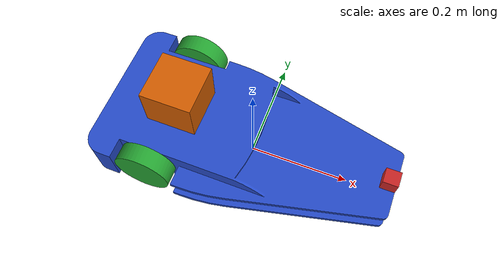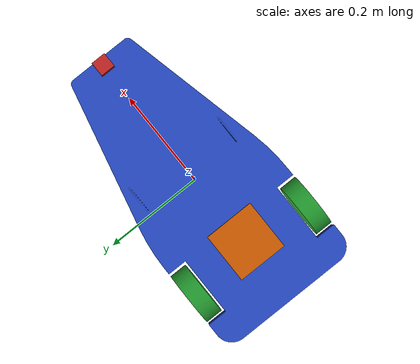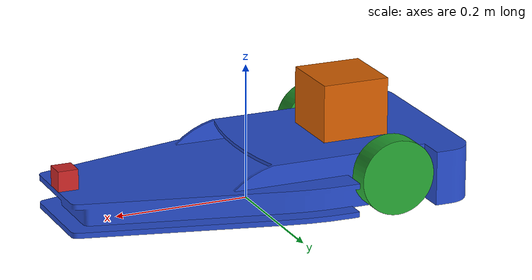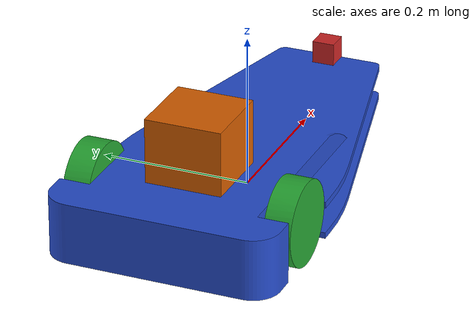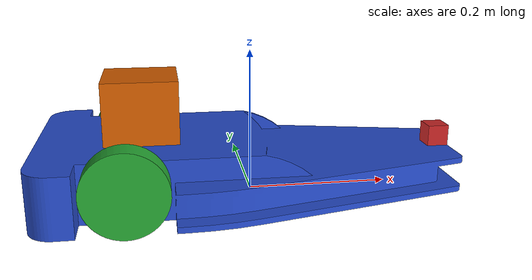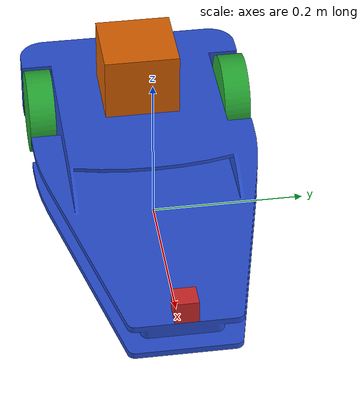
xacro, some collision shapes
<?xml version='1.0'?>

<robot name="my_robot" xmlns:xacro="http://www.ros.org/wiki/xacro">

  <xacro:include filename="$(find my_robot)/urdf/my_robot_improved.gazebo" />

  <link name="robot_footprint"></link>

  <joint name="robot_footprint_joint" type="fixed">
    <origin xyz="0 0 0" rpy="0 0 0" />
    <parent link="robot_footprint"/>
    <child link="chassis" />
  </joint>

  <link name='chassis'>
    <pose>0 0 0 0 0 0</pose>

    <inertial>
      <mass value="15.0"/>
      <origin xyz="0.0 0 0" rpy=" 0 0 0"/>
      <inertia
          ixx="0.1" ixy="0" ixz="0"
          iyy="0.1" iyz="0"
          izz="0.1"
      />
    </inertial>

    <collision name='collision'>
      <origin xyz="0 0 0" rpy=" 0 0 0"/>
      <geometry>
        <box size=".58 .3 .08"/>
      </geometry>
    </collision>

    <visual name='chassis_visual'>
      <origin xyz="0 0 0" rpy="0 0 0"/>
      <geometry>
        <mesh filename="package://my_robot/meshes/chassis.dae" scale="1 1 1"/>
      </geometry>
    </visual>

    <collision name='back_caster_collision'>
      <origin xyz="-0.25 0 0.01" rpy=" 0 0 0"/>
      <geometry>
        <sphere radius="0.0099"/>
      </geometry>
    </collision>

    <visual name='back_caster_visual'>
      <origin xyz="-0.25 0 0.01" rpy=" 0 0 0"/>
      <geometry>
        <sphere radius="0.01"/>
      </geometry>
    </visual>

    <collision name='front_caster_collision'>
      <origin xyz="0.25 0 0.01" rpy=" 0 0 0"/>
      <geometry>
        <sphere radius="0.0099"/>
      </geometry>
    </collision>

    <visual name='front_caster_visual'>
      <origin xyz="0.25 0 0.01" rpy=" 0 0 0"/>
      <geometry>
        <sphere radius="0.01"/>
      </geometry>
    </visual>

  </link>

  <link name='right_wheel'>
    <visual name='right_wheel_visual'>
      <origin xyz="0 0 0" rpy="0 0 0"/>
      <geometry>
        <mesh filename="package://my_robot/meshes/right_wheel.dae" scale="1 1 1"/>
      </geometry>
    </visual>

    <inertial>
      <mass value="5"/>
      <origin xyz="0 0 0" rpy="0 0 0"/>
      <inertia
          ixx="0.1" ixy="0" ixz="0"
          iyy="0.1" iyz="0"
          izz="0.1"
      />
    </inertial>

    <collision name='right_wheel_collision'>
      <origin xyz="0 0 0" rpy="0 0 0"/>
      <geometry>
        <cylinder length="0.035" radius="0.055"/>
      </geometry>
    </collision>
  </link>

  <link name='left_wheel'>
    <visual name='left_wheel_visual'>
      <origin xyz="0 0 0" rpy="0 0 0"/>
      <geometry>
        <mesh filename="package://my_robot/meshes/left_wheel.dae" scale="1 1 1"/>
      </geometry>
    </visual>

    <inertial>
      <mass value="5"/>
      <origin xyz="0 0 0" rpy="0 0 0"/>
      <inertia
          ixx="0.1" ixy="0" ixz="0"
          iyy="0.1" iyz="0"
          izz="0.1"
      />
    </inertial>

    <collision name='left_wheel_collision'>
      <origin xyz="0 0 0" rpy="0 0 0"/>
      <geometry>
        <cylinder length="0.035" radius="0.055"/>
      </geometry>
    </collision>
  </link>

  <joint type="continuous" name="left_wheel_hinge">
    <origin xyz="-0.17 0.1325 0.055" rpy="0 0 0"/>
    <child link="left_wheel"/>
    <parent link="chassis"/>
    <axis xyz="0 1 0" rpy="0 0 0"/>
    <limit effort="10000" velocity="1000"/>
    <dynamics damping="1.0" friction="1.0"/>
  </joint>

  <joint type="continuous" name="right_wheel_hinge">
    <origin xyz="-0.17 -0.1325 0.055" rpy="0 0 0"/>
    <child link="right_wheel"/>
    <parent link="chassis"/>
    <axis xyz="0 1 0" rpy="0 0 0"/>
    <limit effort="10000" velocity="1000"/>
    <dynamics damping="1.0" friction="1.0"/>
  </joint>

  <link name='camera'>
    <visual name='camera_visual'>
      <origin xyz="0 0 0" rpy="0 0 0"/>
      <geometry>
        <box size=".03 .03 .03"/>
      </geometry>
    </visual>

    <inertial>
      <mass value="0.1"/>
      <origin xyz="0 0 0" rpy="0 0 0"/>
      <inertia
          ixx="1e-6" ixy="0" ixz="0"
          iyy="1e-6" iyz="0"
          izz="1e-6"
      />
    </inertial>

    <collision name='camera_collision'>
      <origin xyz="0 0 0" rpy="0 0 0"/>
      <geometry>
        <box size=".03 .03 .03"/>
      </geometry>
    </collision>
  </link>

  <joint type="fixed" name="camera_joint">
    <origin xyz="0.275 0 0.07" rpy="0 0 0"/>
    <child link="camera"/>
    <parent link="chassis"/>
    <axis xyz="0 1 0" rpy="0 0 0"/>
  </joint>

  <link name='hokuyo'>
    <visual name='hokuyo_visual'>
      <origin xyz="0 0 0" rpy="0 0 0"/>
      <geometry>
        <mesh filename="package://my_robot/meshes/hokuyo.dae" scale="1 1 1"/>
      </geometry>
    </visual>

    <inertial>
      <mass value="1e-5"/>
      <origin xyz="0 0 0" rpy="0 0 0"/>
      <inertia
          ixx="1e-6" ixy="0" ixz="0"
          iyy="1e-6" iyz="0"
          izz="1e-6"
      />
    </inertial>

    <collision name='hokuyo_collision'>
      <origin xyz="0 0 0" rpy="0 0 0"/>
      <geometry>
        <box size=".1 .1 .1"/>
      </geometry>
    </collision>
  </link>

  <joint type="fixed" name="hokuyo_joint">
    <origin xyz="-0.15 0 0.12" rpy="0 0 0"/>
    <child link="hokuyo"/>
    <parent link="chassis"/>
    <axis xyz="0 1 0" rpy="0 0 0"/>
  </joint>

  <gazebo reference="left_wheel">
    <material>Gazebo/Green</material>
  </gazebo>

  <gazebo reference="right_wheel">
    <material>Gazebo/Green</material>
  </gazebo>

  <gazebo reference="chassis">
    <material>Gazebo/Blue</material>
  </gazebo>

  <gazebo reference="camera">
    <material>Gazebo/Red</material>
  </gazebo>

</robot>
